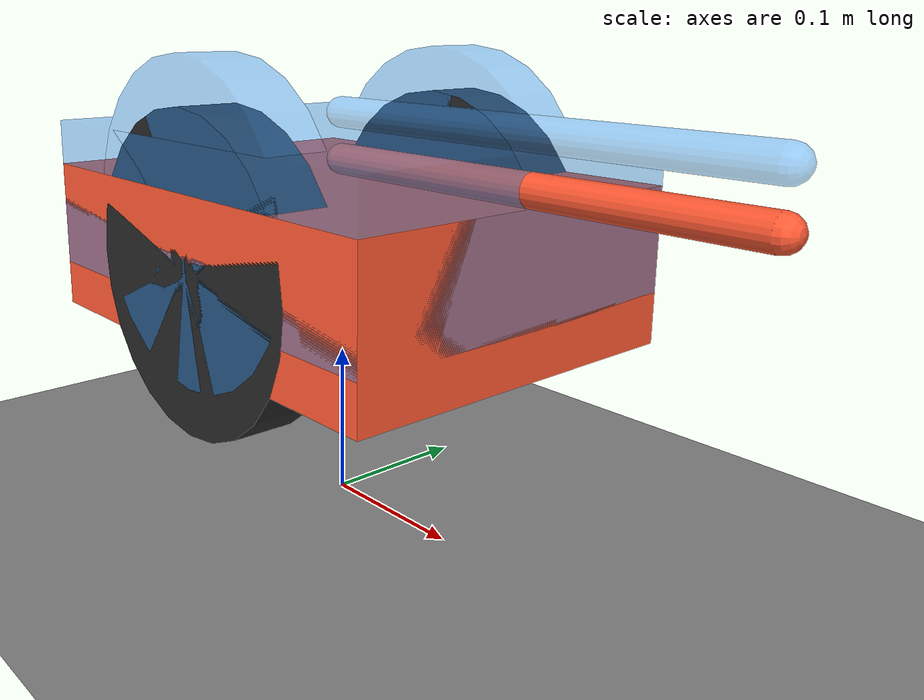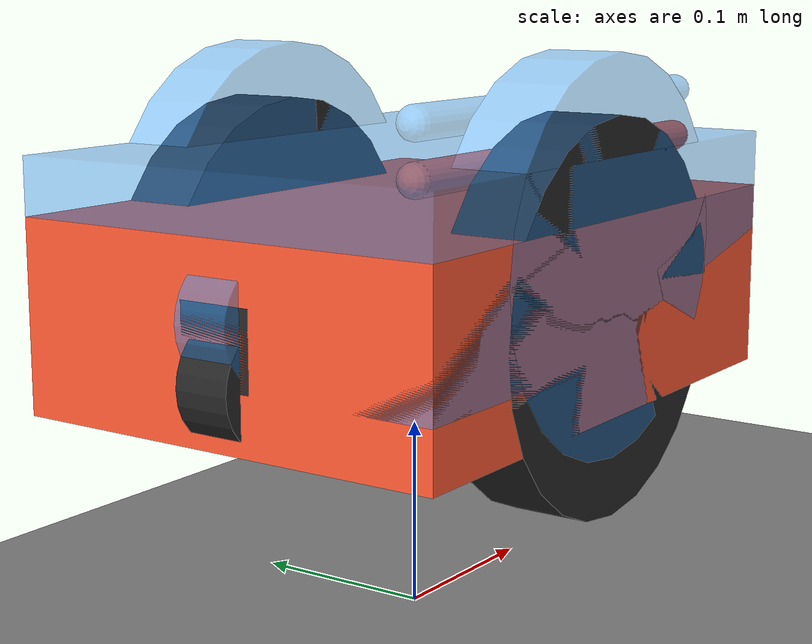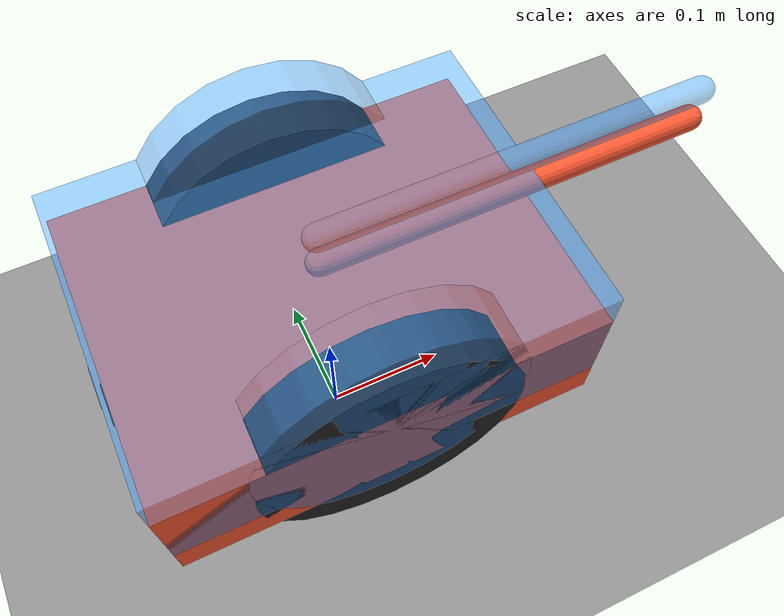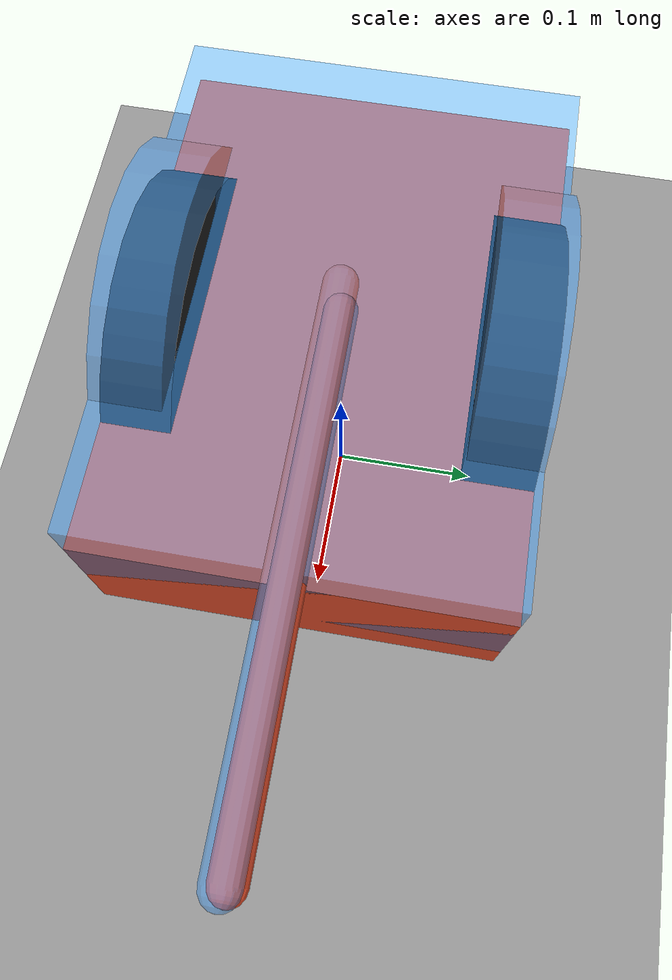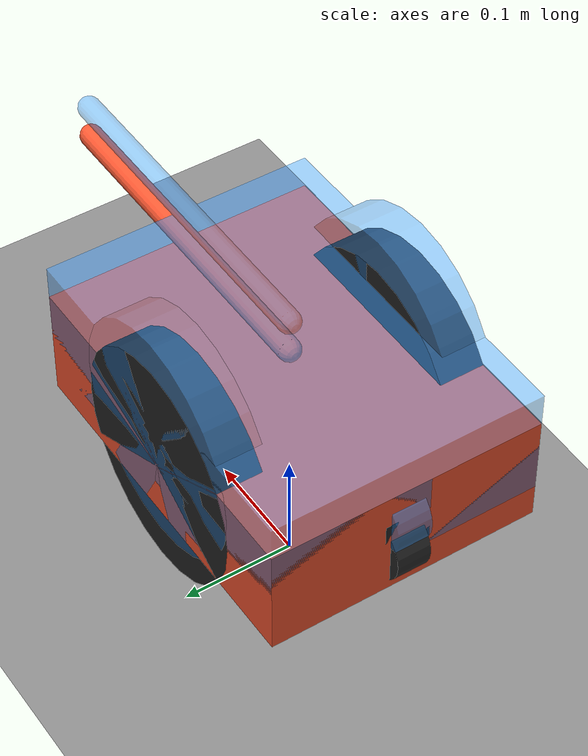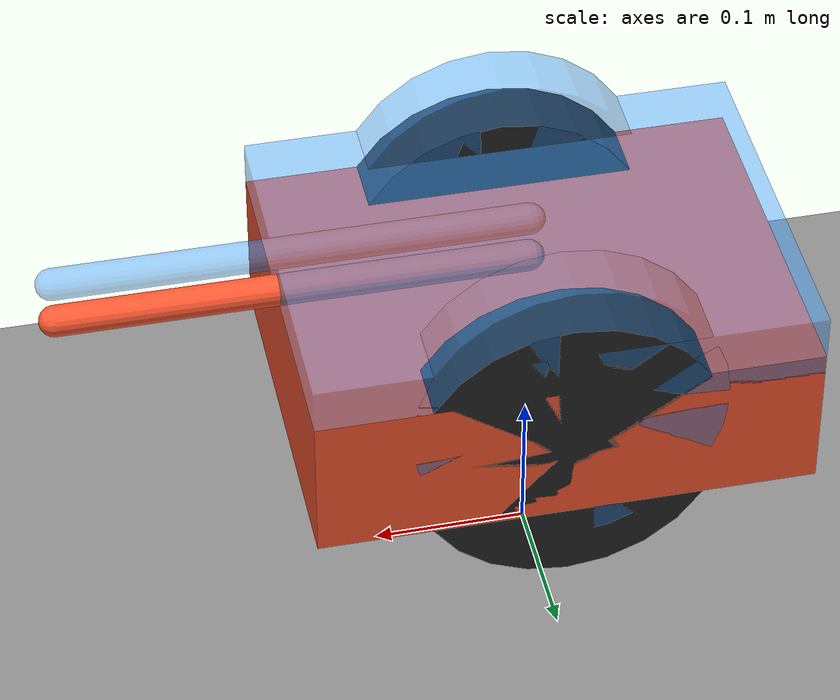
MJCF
<mujoco model="two_diffdrive_robots">

  <compiler angle="radian" coordinate="local" inertiafromgeom="true"/>
  <option timestep="0.002" gravity="0 0 -9.81" integrator="RK4"/>
  <size njmax="2000" nconmax="500"/>

  <default>
    <geom contype="1" conaffinity="1"
          friction="1.0 0.005 0.0001"
          solref="0.002 1"
          solimp="0.95 0.99 0.001"
          density="400"/>
    <joint damping="0.1" armature="0.001"/>
  </default>

  <!-- =======================
       ASSETS
       ======================= -->
  <asset>
    <!-- Shiny checkered texture -->
    <texture
        name="checker_tex"
        type="2d"
        builtin="checker"
        width="512"
        height="512"
        rgb1="0.95 0.95 0.95"
        rgb2="0.15 0.15 0.15"/>

    <!-- Shiny checker material -->
    <material
        name="shiny_checker"
        texture="checker_tex"
        texrepeat="12 12"
        reflectance="0.4"
        shininess="0.9"
        specular="0.8"/>

    <!-- Robot materials -->
    <material name="ghost" rgba="0.20 0.60 1.00 0.45"/>
    <material name="solid" rgba="1.00 0.35 0.20 1.00"/>
    <material name="dark"  rgba="0.15 0.15 0.15 1.00"/>
  </asset>

  <worldbody>

    <!-- =======================
         FLOOR (SHINY CHECKERED)
         ======================= -->
    <geom
        name="floor"
        type="plane"
        pos="0 0 0"
        size="30 30 0.1"
        material="shiny_checker"
        friction="1.0 0.005 0.0001"/>

    <!-- =====================================================
         GROUND TRUTH ROBOT (GHOSTED, SLIGHTLY RAISED)
         ===================================================== -->
    <body name="robot_gt" pos="0 0 0.15">
      <freejoint/>

      <!-- Chassis -->
      <geom name="gt_chassis" type="box"
            pos="0 0 0.05"
            size="0.16 0.12 0.05"
            material="ghost"/>

      <!-- Heading arrow -->
      <geom name="gt_heading" type="capsule"
            fromto="0 0 0.11 0.30 0 0.11"
            size="0.01"
            material="ghost"/>

      <!-- Left wheel -->
      <body name="gt_wheel_left" pos="0  0.10 0.05">
        <joint type="hinge" axis="0 1 0"/>
        <geom type="cylinder"
              size="0.10 0.02"
              euler="1.570796 0 0"
              material="ghost"
              density="600"/>
      </body>

      <!-- Right wheel -->
      <body name="gt_wheel_right" pos="0 -0.10 0.05">
        <joint type="hinge" axis="0 1 0"/>
        <geom type="cylinder"
              size="0.10 0.02"
              euler="1.570796 0 0"
              material="ghost"
              density="600"/>
      </body>

      <!-- Passive caster -->
      <body name="gt_caster_mount" pos="-0.14 0 0.03">
        <joint type="hinge" axis="0 0 1"/>

        <!-- fork -->
        <geom type="box"
              pos="0 0 0.02"
              size="0.02 0.02 0.02"
              material="ghost"/>

        <body name="gt_caster_wheel" pos="0 0 0">
          <joint type="hinge" axis="0 1 0"/>
          <geom type="cylinder"
                size="0.03 0.015"
                euler="1.570796 0 0"
                material="ghost"
                friction="0.6 0.002 0.00005"
                density="600"/>
        </body>
      </body>
    </body>

    <!-- =====================================================
         ESTIMATED ROBOT (SOLID)
         ===================================================== -->
    <body name="robot_est" pos="0 0 0.12">
      <freejoint/>

      <geom name="est_chassis" type="box"
            pos="0 0 0.05"
            size="0.16 0.12 0.05"
            material="solid"/>

      <geom name="est_heading" type="capsule"
            fromto="0 0 0.11 0.30 0 0.11"
            size="0.01"
            material="solid"/>

      <!-- Left wheel -->
      <body name="est_wheel_left" pos="0  0.10 0.05">
        <joint type="hinge" axis="0 1 0"/>
        <geom type="cylinder"
              size="0.10 0.02"
              euler="1.570796 0 0"
              material="dark"
              density="600"/>
      </body>

      <!-- Right wheel -->
      <body name="est_wheel_right" pos="0 -0.10 0.05">
        <joint type="hinge" axis="0 1 0"/>
        <geom type="cylinder"
              size="0.10 0.02"
              euler="1.570796 0 0"
              material="dark"
              density="600"/>
      </body>

      <!-- Passive caster -->
      <body name="est_caster_mount" pos="-0.14 0 0.03">
        <joint type="hinge" axis="0 0 1"/>

        <geom type="box"
              pos="0 0 0.02"
              size="0.02 0.02 0.02"
              material="dark"/>

        <body name="est_caster_wheel" pos="0 0 0">
          <joint type="hinge" axis="0 1 0"/>
          <geom type="cylinder"
                size="0.03 0.015"
                euler="1.570796 0 0"
                material="dark"
                friction="0.6 0.002 0.00005"
                density="600"/>
        </body>
      </body>
    </body>

  </worldbody>
</mujoco>
